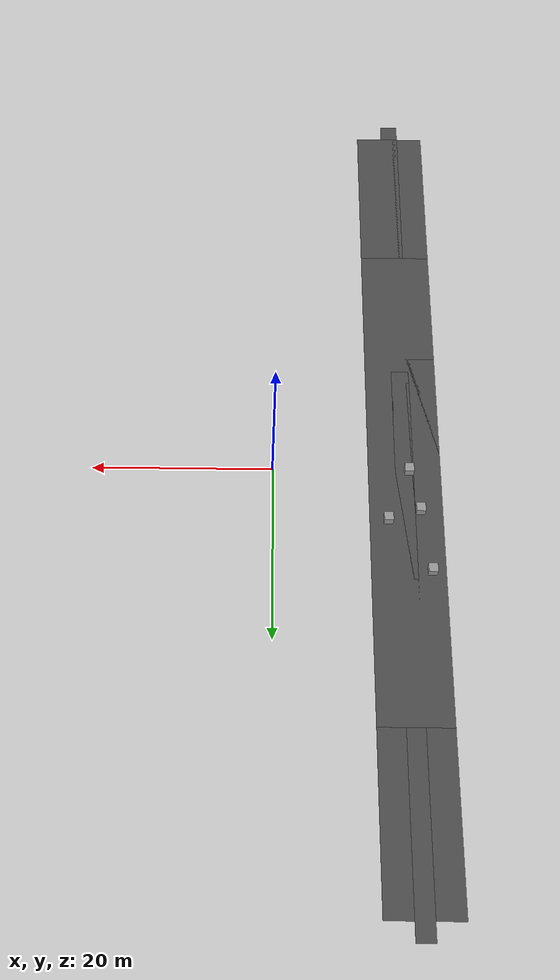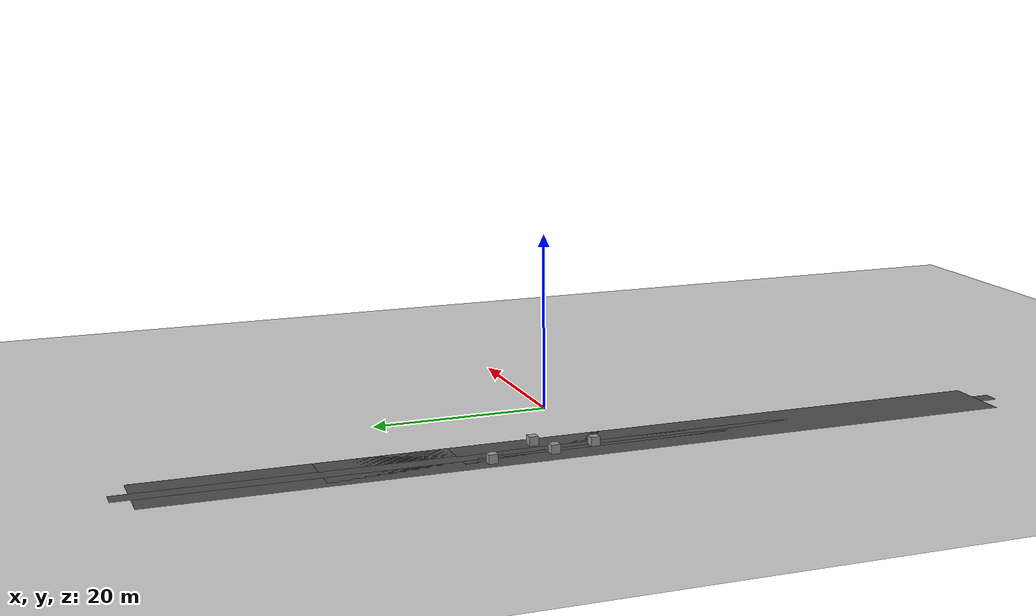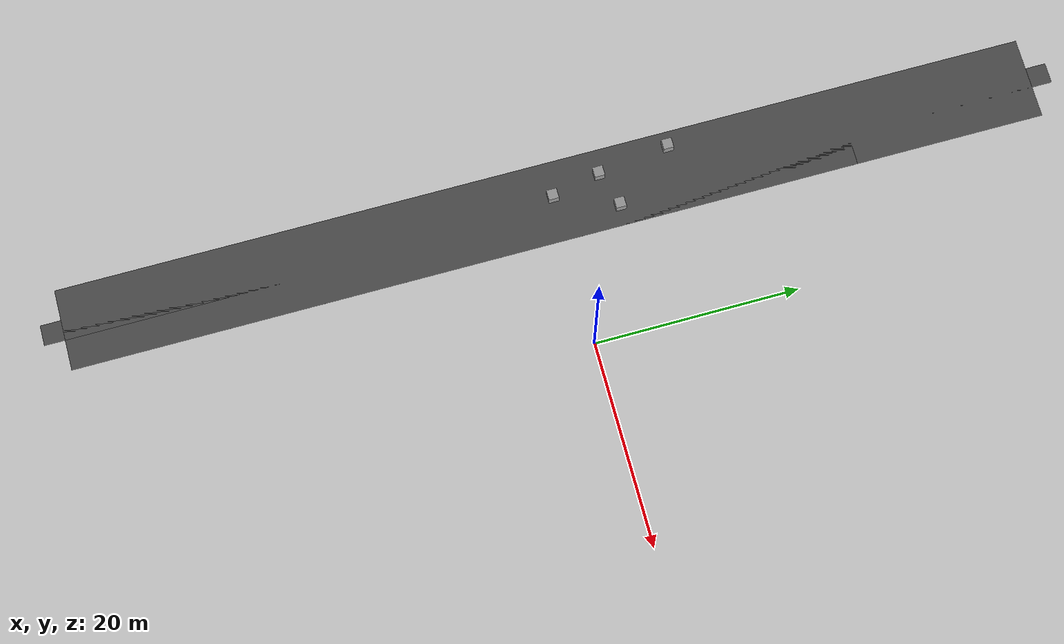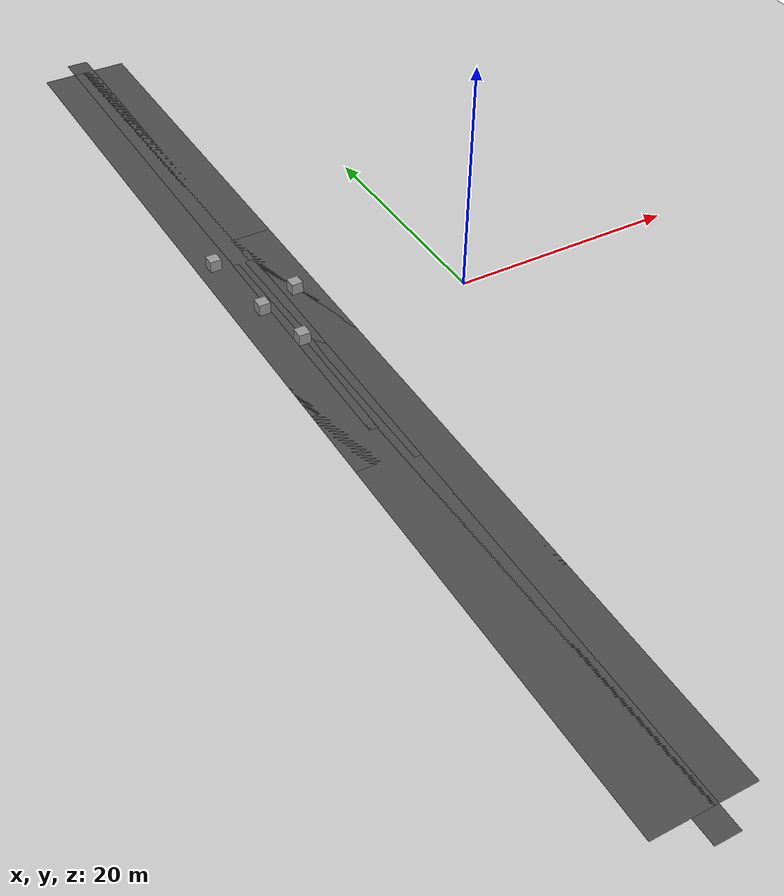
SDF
<sdf version="1.6">
 <world name="default">
  <model name="ground_plane">
   <static>1</static>
   <link name="link">
    <collision name="collision">
     <geometry><plane><normal>0 0 1</normal><size>100 100</size></plane></geometry>
     <surface><friction><ode><mu>100</mu><mu2>50</mu2></ode></friction></surface>
    </collision>
    <visual name="visual">
     <cast_shadows>0</cast_shadows>
     <geometry><plane><normal>0 0 1</normal><size>100 100</size></plane></geometry>
     <material>
      <script><uri>file://media/materials/scripts/gazebo.material</uri><name>Gazebo/Grey</name></script>
     </material>
    </visual>
   </link>
  </model>
  <model name="road_segment">
   <pose>-14.5 0 0 0 -0 1.57</pose>
   <static>1</static>
   <link name="road">
    <collision name="collision">
     <geometry><box><size>96 8 0.001</size></box></geometry>
     <surface><friction><ode><mu>100</mu><mu2>50</mu2></ode></friction></surface>
    </collision>
    <visual name="visual">
     <geometry><box><size>96 8 0.001</size></box></geometry>
     <material>
      <script><uri>file://media/materials/scripts/gazebo.material</uri><name>Gazebo/Road</name></script>
     </material>
    </visual>
   </link>
   <link name="road1">
    <collision name="collision">
     <geometry><box><size>58.5 8 0.001</size></box></geometry>
     <surface><friction><ode><mu>100</mu><mu2>50</mu2></ode></friction></surface>
    </collision>
    <visual name="visual">
     <geometry><box><size>58.5 8 0.001</size></box></geometry>
     <material>
      <script><uri>file://media/materials/scripts/gazebo.material</uri><name>Gazebo/Road</name></script>
     </material>
    </visual>
   </link>
   <link name="road2">
    <collision name="collision">
     <geometry><box><size>29.5 8 0.001</size></box></geometry>
     <surface><friction><ode><mu>100</mu><mu2>50</mu2></ode></friction></surface>
    </collision>
    <visual name="visual">
     <geometry><box><size>29.5 8 0.001</size></box></geometry>
     <material>
      <script><uri>file://media/materials/scripts/gazebo.material</uri><name>Gazebo/Road</name></script>
     </material>
    </visual>
   </link>
   <link name="road3">
    <collision name="collision">
     <geometry><box><size>58.5 8 0.001</size></box></geometry>
     <surface><friction><ode><mu>100</mu><mu2>50</mu2></ode></friction></surface>
    </collision>
    <visual name="visual">
     <geometry><box><size>58.5 8 0.001</size></box></geometry>
     <material>
      <script><uri>file://media/materials/scripts/gazebo.material</uri><name>Gazebo/Road</name></script>
     </material>
    </visual>
   </link>
   <link name="road4">
    <collision name="collision">
     <geometry><box><size>100 2 0.001</size></box></geometry>
     <surface><friction><ode><mu>100</mu><mu2>50</mu2></ode></friction></surface>
    </collision>
    <visual name="visual">
     <geometry><box><size>100 2 0.001</size></box></geometry>
     <material>
      <script><uri>file://media/materials/scripts/gazebo.material</uri><name>Gazebo/Road</name></script>
     </material>
    </visual>
   </link>
   <link name="road5">
    <collision name="collision">
     <geometry><box><size>100 2 0.001</size></box></geometry>
     <surface><friction><ode><mu>100</mu><mu2>50</mu2></ode></friction></surface>
    </collision>
    <visual name="visual">
     <geometry><box><size>100 2 0.001</size></box></geometry>
     <material>
      <script><uri>file://media/materials/scripts/gazebo.material</uri><name>Gazebo/Road</name></script>
     </material>
    </visual>
   </link>
   <link name="road6">
    <collision name="collision">
     <geometry><box><size>96 2 0.001</size></box></geometry>
     <surface><friction><ode><mu>100</mu><mu2>50</mu2></ode></friction></surface>
    </collision>
    <visual name="visual">
     <geometry><box><size>96 2 0.001</size></box></geometry>
     <material>
      <script><uri>file://media/materials/scripts/gazebo.material</uri><name>Gazebo/Road</name></script>
     </material>
    </visual>
   </link>
   <link name="road7">
    <collision name="collision">
     <geometry><box><size>96 2 0.001</size></box></geometry>
     <surface><friction><ode><mu>100</mu><mu2>50</mu2></ode></friction></surface>
    </collision>
    <visual name="visual">
     <geometry><box><size>96 2 0.001</size></box></geometry>
     <material>
      <script><uri>file://media/materials/scripts/gazebo.material</uri><name>Gazebo/Road</name></script>
     </material>
    </visual>
   </link>
   <link name="road8">
    <collision name="collision">
     <geometry><box><size>31 2 0.001</size></box></geometry>
     <surface><friction><ode><mu>100</mu><mu2>50</mu2></ode></friction></surface>
    </collision>
    <visual name="visual">
     <geometry><box><size>31 2 0.001</size></box></geometry>
     <material>
      <script><uri>file://media/materials/scripts/gazebo.material</uri><name>Gazebo/Road</name></script>
     </material>
    </visual>
   </link>
   <link name="road9">
    <collision name="collision">
     <geometry><box><size>26 2 0.001</size></box></geometry>
     <surface><friction><ode><mu>100</mu><mu2>50</mu2></ode></friction></surface>
    </collision>
    <visual name="visual">
     <geometry><box><size>26 2 0.001</size></box></geometry>
     <material>
      <script><uri>file://media/materials/scripts/gazebo.material</uri><name>Gazebo/Road</name></script>
     </material>
    </visual>
   </link>
   <link name="road10">
    <collision name="collision">
     <geometry><box><size>28.5 2 0.0001</size></box></geometry>
     <surface><friction><ode><mu>100</mu><mu2>50</mu2></ode></friction></surface>
    </collision>
    <visual name="visual">
     <geometry><box><size>28.5 2 0.0001</size></box></geometry>
     <material>
      <script><uri>file://media/materials/scripts/gazebo.material</uri><name>Gazebo/Road</name></script>
     </material>
    </visual>
   </link>
   <link name="road11">
    <collision name="collision">
     <geometry><box><size>29.5 2 0.001</size></box></geometry>
     <surface><friction><ode><mu>100</mu><mu2>50</mu2></ode></friction></surface>
    </collision>
    <visual name="visual">
     <geometry><box><size>29.5 2 0.001</size></box></geometry>
     <material>
      <script><uri>file://media/materials/scripts/gazebo.material</uri><name>Gazebo/Road</name></script>
     </material>
    </visual>
   </link>
   <link name="road12">
    <collision name="collision">
     <geometry><box><size>23 2 0.001</size></box></geometry>
     <surface><friction><ode><mu>100</mu><mu2>50</mu2></ode></friction></surface>
    </collision>
    <visual name="visual">
     <geometry><box><size>23 2 0.001</size></box></geometry>
     <material>
      <script><uri>file://media/materials/scripts/gazebo.material</uri><name>Gazebo/Road</name></script>
     </material>
    </visual>
   </link>
   <link name="road13">
    <collision name="collision">
     <geometry><box><size>18 2 0.001</size></box></geometry>
     <surface><friction><ode><mu>100</mu><mu2>50</mu2></ode></friction></surface>
    </collision>
    <visual name="visual">
     <geometry><box><size>18 2 0.001</size></box></geometry>
     <material>
      <script><uri>file://media/materials/scripts/gazebo.material</uri><name>Gazebo/Road</name></script>
     </material>
    </visual>
   </link>
  </model>
  <model name="unit_box_28_clone_78">
   <pose>-15 0 0.5005 -0 -0 -0</pose>
   <link name="link">
    <inertial>
     <mass>1</mass>
     <inertia>
      <ixx>0.166667</ixx>
      <ixy>0</ixy>
      <ixz>0</ixz>
      <iyy>0.166667</iyy>
      <iyz>0</iyz>
      <izz>0.166667</izz>
     </inertia>
    </inertial>
    <collision name="collision"><geometry><box><size>1 1 1</size></box></geometry></collision>
    <visual name="visual">
     <geometry><box><size>1 1 1</size></box></geometry>
     <material>
      <script><name>Gazebo/Grey</name><uri>file://media/materials/scripts/gazebo.material</uri></script>
     </material>
    </visual>
   </link>
  </model>
  <model name="unit_box_28_clone_84">
   <pose>-17 12 0.5005 -0 -0 -0</pose>
   <link name="link">
    <inertial>
     <mass>1</mass>
     <inertia>
      <ixx>0.166667</ixx>
      <ixy>0</ixy>
      <ixz>0</ixz>
      <iyy>0.166667</iyy>
      <iyz>0</iyz>
      <izz>0.166667</izz>
     </inertia>
    </inertial>
    <collision name="collision"><geometry><box><size>1 1 1</size></box></geometry></collision>
    <visual name="visual">
     <geometry><box><size>1 1 1</size></box></geometry>
     <material>
      <script><name>Gazebo/Grey</name><uri>file://media/materials/scripts/gazebo.material</uri></script>
     </material>
    </visual>
   </link>
  </model>
  <model name="unit_box_28_clone_85">
   <pose>-12.5214 6 0.5005 -0 -0 -0</pose>
   <link name="link">
    <inertial>
     <mass>1</mass>
     <inertia>
      <ixx>0.166667</ixx>
      <ixy>0</ixy>
      <ixz>0</ixz>
      <iyy>0.166667</iyy>
      <iyz>0</iyz>
      <izz>0.166667</izz>
     </inertia>
    </inertial>
    <collision name="collision"><geometry><box><size>1 1 1</size></box></geometry></collision>
    <visual name="visual">
     <geometry><box><size>1 1 1</size></box></geometry>
     <material>
      <script><name>Gazebo/Grey</name><uri>file://media/materials/scripts/gazebo.material</uri></script>
     </material>
    </visual>
   </link>
  </model>
  <model name="unit_box_28_clone_86">
   <pose>-16.0455 4.85303 0.5005 -0 -0 -0</pose>
   <link name="link">
    <inertial>
     <mass>1</mass>
     <inertia>
      <ixx>0.166667</ixx>
      <ixy>0</ixy>
      <ixz>0</ixz>
      <iyy>0.166667</iyy>
      <iyz>0</iyz>
      <izz>0.166667</izz>
     </inertia>
    </inertial>
    <collision name="collision"><geometry><box><size>1 1 1</size></box></geometry></collision>
    <visual name="visual">
     <geometry><box><size>1 1 1</size></box></geometry>
     <material>
      <script><name>Gazebo/Grey</name><uri>file://media/materials/scripts/gazebo.material</uri></script>
     </material>
    </visual>
   </link>
  </model>
 </world>
</sdf>
